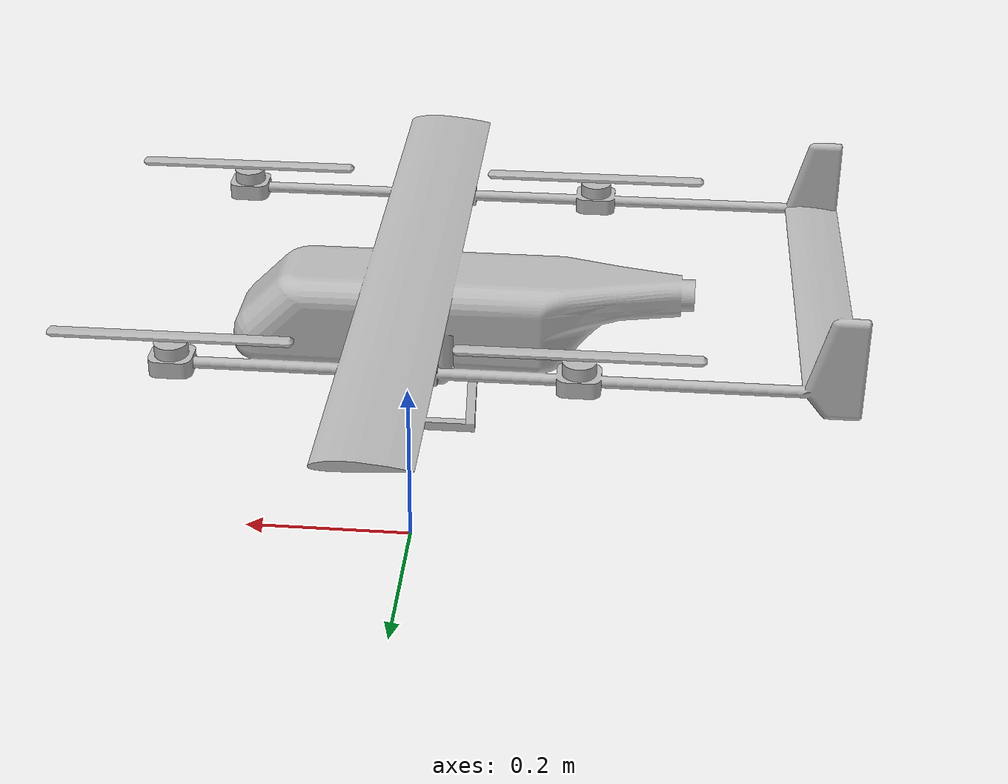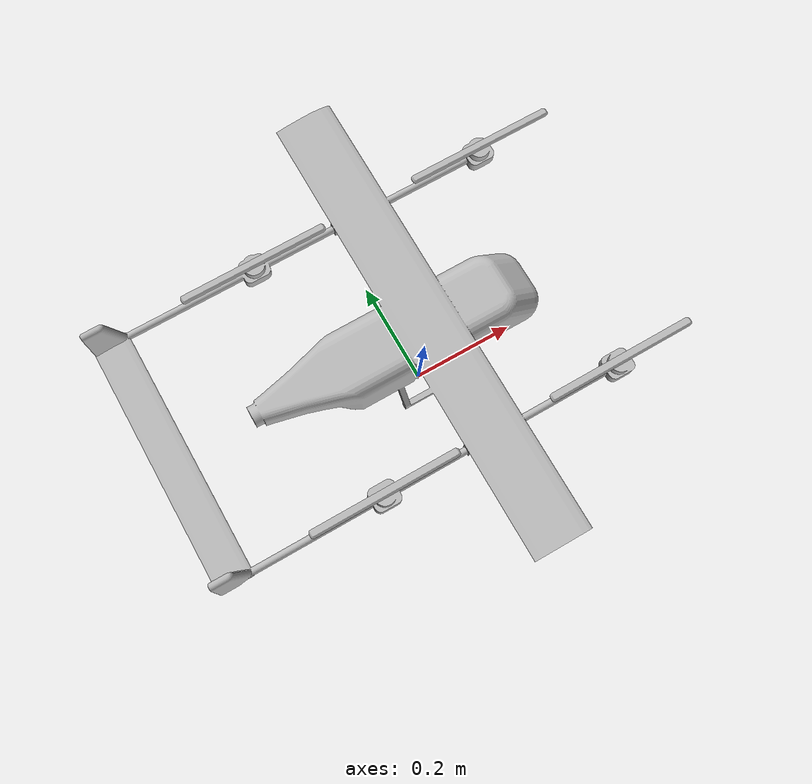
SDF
<?xml version="1.0" encoding="UTF-8"?>
<sdf version='1.9'>
  <model name='medvtol'>
    <pose>0 0 0.35 0 0 0</pose>
    <self_collide>false</self_collide>
    <static>false</static>

    <link name="base_link">
      <inertial>
        <pose>0 0 -0.1 0 0 0</pose>
        <mass>2.5</mass>
        <inertia>
          <ixx>0.0309824</ixx>
          <ixy>0</ixy>
          <ixz>0</ixz>
          <iyy>0.030828499999999998</iyy>
          <iyz>0</iyz>
          <izz>0.056887699999999999</izz>
        </inertia>
      </inertial>
      <gravity>true</gravity>
      <velocity_decay />

      <visual name="base_link_visual">
        <pose>-0.20 0 0 1.5700000000000001 0 1.5700000000000001</pose>
        <geometry>
          <mesh>
            <scale>0.01 0.01 0.01</scale>
            <uri>model://medvtol_description/meshes/medvtol.obj</uri>
          </mesh>
        </geometry>
      </visual>

      <collision name="base_link_collision">
        <pose>-0.20 0 0 1.5700000000000001 0 1.5700000000000001</pose>
        <geometry>
          <mesh>
            <scale>0.01 0.01 0.01</scale>
            <uri>model://medvtol_description/meshes/medvtol.obj</uri>
          </mesh>
        </geometry>
        <surface>
          <contact>
            <ode>
              <min_depth>0.001</min_depth>
              <max_vel>0</max_vel>
            </ode>
          </contact>
          <friction>
            <ode />
          </friction>
        </surface>
      </collision>

      <!-- SENSORS MATCHING X500 EXACTLY -->
      <sensor name="air_pressure_sensor" type="air_pressure">
        <gz_frame_id>base_link</gz_frame_id>
        <always_on>1</always_on>
        <update_rate>50</update_rate>
        <air_pressure>
          <pressure>
            <noise type="gaussian">
              <mean>0</mean>
              <stddev>3</stddev>
            </noise>
          </pressure>
        </air_pressure>
      </sensor>

      <sensor name="magnetometer_sensor" type="magnetometer">
        <gz_frame_id>base_link</gz_frame_id>
        <always_on>1</always_on>
        <update_rate>100</update_rate>
        <magnetometer>
          <x><noise type="gaussian"><stddev>0.0001</stddev></noise></x>
          <y><noise type="gaussian"><stddev>0.0001</stddev></noise></y>
          <z><noise type="gaussian"><stddev>0.0001</stddev></noise></z>
        </magnetometer>
      </sensor>

      <sensor name="imu_sensor" type="imu">
        <gz_frame_id>base_link</gz_frame_id>
        <always_on>1</always_on>
        <update_rate>250</update_rate>
        <imu>
          <angular_velocity>
            <x><noise type="gaussian"><mean>0.0</mean><stddev>0.0008726646</stddev></noise></x>
            <y><noise type="gaussian"><mean>0.0</mean><stddev>0.0008726646</stddev></noise></y>
            <z><noise type="gaussian"><mean>0.0</mean><stddev>0.0008726646</stddev></noise></z>
          </angular_velocity>
          <linear_acceleration>
            <x><noise type="gaussian"><mean>0.0</mean><stddev>0.00637</stddev></noise></x>
            <y><noise type="gaussian"><mean>0.0</mean><stddev>0.00637</stddev></noise></y>
            <z><noise type="gaussian"><mean>0.0</mean><stddev>0.00686</stddev></noise></z>
          </linear_acceleration>
        </imu>
      </sensor>

      <sensor name="navsat_sensor" type="navsat">
        <gz_frame_id>base_link</gz_frame_id>
        <always_on>1</always_on>
        <update_rate>30</update_rate>
      </sensor>
    </link>

    <!-- Rotor 0 (Front Right - CCW) -->
    <link name="rotor_0">
      <gravity>true</gravity>
      <self_collide>false</self_collide>
      <velocity_decay />
      <pose>0.214 -0.207 0.029 0 0 0</pose>
      <inertial>
        <pose>0 0 0 0 0 1.5700000000000001</pose>
        <mass>0.05</mass>
        <inertia>
          <ixx>5.20833e-07</ixx><ixy>0</ixy><ixz>0</ixz>
          <iyy>0.000268854</iyy><iyz>0</iyz><izz>0.000269271</izz>
        </inertia>
      </inertial>
      <visual name="rotor_0_visual">
        <pose>0 0 0 1.5700000000000001 0 0</pose>
        <geometry><mesh><scale>0.01 0.01 0.01</scale><uri>model://medvtol_description/meshes/medvtol_prop.obj</uri></mesh></geometry>
      </visual>
    </link>
    <joint name="rotor_0_joint" type="revolute">
      <parent>base_link</parent>
      <child>rotor_0</child>
      <axis>
        <xyz>0 0 1</xyz>
        <limit><lower>-1e+16</lower><upper>1e+16</upper></limit>
        <dynamics><spring_reference>0</spring_reference><spring_stiffness>0</spring_stiffness></dynamics>
      </axis>
    </joint>

    <!-- Rotor 1 (Back Left - CCW) -->
    <link name="rotor_1">
      <gravity>true</gravity>
      <self_collide>false</self_collide>
      <velocity_decay />
      <pose>-0.201 0.207 0.029 0 0 0</pose>
      <inertial>
        <pose>0 0 0 0 0 1.5700000000000001</pose>
        <mass>0.05</mass>
        <inertia>
          <ixx>5.20833e-07</ixx><ixy>0</ixy><ixz>0</ixz>
          <iyy>0.000268854</iyy><iyz>0</iyz><izz>0.000269271</izz>
        </inertia>
      </inertial>
      <visual name="rotor_1_visual">
        <pose>0 0 0 1.5700000000000001 0 0</pose>
        <geometry><mesh><scale>0.01 0.01 0.01</scale><uri>model://medvtol_description/meshes/medvtol_prop.obj</uri></mesh></geometry>
      </visual>
    </link>
    <joint name="rotor_1_joint" type="revolute">
      <parent>base_link</parent>
      <child>rotor_1</child>
      <axis>
        <xyz>0 0 1</xyz>
        <limit><lower>-1e+16</lower><upper>1e+16</upper></limit>
        <dynamics><spring_reference>0</spring_reference><spring_stiffness>0</spring_stiffness></dynamics>
      </axis>
    </joint>

    <!-- Rotor 2 (Front Left - CW) -->
    <link name="rotor_2">
      <gravity>true</gravity>
      <self_collide>false</self_collide>
      <velocity_decay />
      <pose>0.214 0.207 0.029 0 0 0</pose>
      <inertial>
        <pose>0 0 0 0 0 1.5700000000000001</pose>
        <mass>0.05</mass>
        <inertia>
          <ixx>5.20833e-07</ixx><ixy>0</ixy><ixz>0</ixz>
          <iyy>0.000268854</iyy><iyz>0</iyz><izz>0.000269271</izz>
        </inertia>
      </inertial>
      <visual name="rotor_2_visual">
        <pose>0 0 0 1.5700000000000001 0 0</pose>
        <geometry><mesh><scale>0.01 0.01 0.01</scale><uri>model://medvtol_description/meshes/medvtol_prop.obj</uri></mesh></geometry>
      </visual>
    </link>
    <joint name="rotor_2_joint" type="revolute">
      <parent>base_link</parent>
      <child>rotor_2</child>
      <axis>
        <xyz>0 0 1</xyz>
        <limit><lower>-1e+16</lower><upper>1e+16</upper></limit>
        <dynamics><spring_reference>0</spring_reference><spring_stiffness>0</spring_stiffness></dynamics>
      </axis>
    </joint>

    <!-- Rotor 3 (Back Right - CW) -->
    <link name="rotor_3">
      <gravity>true</gravity>
      <self_collide>false</self_collide>
      <velocity_decay />
      <pose>-0.201 -0.207 0.029 0 0 0</pose>
      <inertial>
        <pose>0 0 0 0 0 1.5700000000000001</pose>
        <mass>0.05</mass>
        <inertia>
          <ixx>5.20833e-07</ixx><ixy>0</ixy><ixz>0</ixz>
          <iyy>0.000268854</iyy><iyz>0</iyz><izz>0.000269271</izz>
        </inertia>
      </inertial>
      <visual name="rotor_3_visual">
        <pose>0 0 0 1.5700000000000001 0 0</pose>
        <geometry><mesh><scale>0.01 0.01 0.01</scale><uri>model://medvtol_description/meshes/medvtol_prop.obj</uri></mesh></geometry>
      </visual>
    </link>
    <joint name="rotor_3_joint" type="revolute">
      <parent>base_link</parent>
      <child>rotor_3</child>
      <axis>
        <xyz>0 0 1</xyz>
        <limit><lower>-1e+16</lower><upper>1e+16</upper></limit>
        <dynamics><spring_reference>0</spring_reference><spring_stiffness>0</spring_stiffness></dynamics>
      </axis>
    </joint>

    <!-- MOTOR PLUGINS MATCHING X500 EXACTLY -->
 <plugin filename="gz-sim-multicopter-motor-model-system" name="gz::sim::systems::MulticopterMotorModel">
      <robotNamespace>medvtol_0</robotNamespace>
      <jointName>rotor_0_joint</jointName>
      <linkName>rotor_0</linkName>
      <turningDirection>ccw</turningDirection>
      <timeConstantUp>0.0125</timeConstantUp>
      <timeConstantDown>0.025</timeConstantDown>
      <maxRotVelocity>1671.0</maxRotVelocity>
      <motorConstant>2.107e-05</motorConstant>
      <momentConstant>0.016</momentConstant>
      <commandSubTopic>command/motor_speed</commandSubTopic>
      <motorNumber>0</motorNumber>
      <rotorDragCoefficient>8.06428e-05</rotorDragCoefficient>
      <rollingMomentCoefficient>1e-06</rollingMomentCoefficient>
      <rotorVelocitySlowdownSim>10</rotorVelocitySlowdownSim>
      <motorType>velocity</motorType>
    </plugin>

    <plugin filename="gz-sim-multicopter-motor-model-system" name="gz::sim::systems::MulticopterMotorModel">
      <robotNamespace>medvtol_0</robotNamespace>
      <jointName>rotor_1_joint</jointName>
      <linkName>rotor_1</linkName>
      <turningDirection>ccw</turningDirection>
      <timeConstantUp>0.0125</timeConstantUp>
      <timeConstantDown>0.025</timeConstantDown>
      <maxRotVelocity>1671.0</maxRotVelocity>
      <motorConstant>2.107e-05</motorConstant>
      <momentConstant>0.016</momentConstant>
      <commandSubTopic>command/motor_speed</commandSubTopic>
      <motorNumber>1</motorNumber>
      <rotorDragCoefficient>8.06428e-05</rotorDragCoefficient>
      <rollingMomentCoefficient>1e-06</rollingMomentCoefficient>
      <rotorVelocitySlowdownSim>10</rotorVelocitySlowdownSim>
      <motorType>velocity</motorType>
    </plugin>

    <plugin filename="gz-sim-multicopter-motor-model-system" name="gz::sim::systems::MulticopterMotorModel">
      <robotNamespace>medvtol_0</robotNamespace>
      <jointName>rotor_2_joint</jointName>
      <linkName>rotor_2</linkName>
      <turningDirection>cw</turningDirection>
      <timeConstantUp>0.0125</timeConstantUp>
      <timeConstantDown>0.025</timeConstantDown>
      <maxRotVelocity>1671.0</maxRotVelocity>
      <motorConstant>2.107e-05</motorConstant>
      <momentConstant>0.016</momentConstant>
      <commandSubTopic>command/motor_speed</commandSubTopic>
      <motorNumber>2</motorNumber>
      <rotorDragCoefficient>8.06428e-05</rotorDragCoefficient>
      <rollingMomentCoefficient>1e-06</rollingMomentCoefficient>
      <rotorVelocitySlowdownSim>10</rotorVelocitySlowdownSim>
      <motorType>velocity</motorType>
    </plugin>

    <plugin filename="gz-sim-multicopter-motor-model-system" name="gz::sim::systems::MulticopterMotorModel">
      <robotNamespace>medvtol_0</robotNamespace>
      <jointName>rotor_3_joint</jointName>
      <linkName>rotor_3</linkName>
      <turningDirection>cw</turningDirection>
      <timeConstantUp>0.0125</timeConstantUp>
      <timeConstantDown>0.025</timeConstantDown>
      <maxRotVelocity>1671.0</maxRotVelocity>
      <motorConstant>2.107e-05</motorConstant>
      <momentConstant>0.016</momentConstant>
      <commandSubTopic>command/motor_speed</commandSubTopic>
      <motorNumber>3</motorNumber>
      <rotorDragCoefficient>8.06428e-05</rotorDragCoefficient>
      <rollingMomentCoefficient>1e-06</rollingMomentCoefficient>
      <rotorVelocitySlowdownSim>10</rotorVelocitySlowdownSim>
      <motorType>velocity</motorType>
    </plugin>

    <plugin filename="MotorFailurePlugin" name="gz::sim::systems::MotorFailureSystem"></plugin>
  </model>
</sdf>
